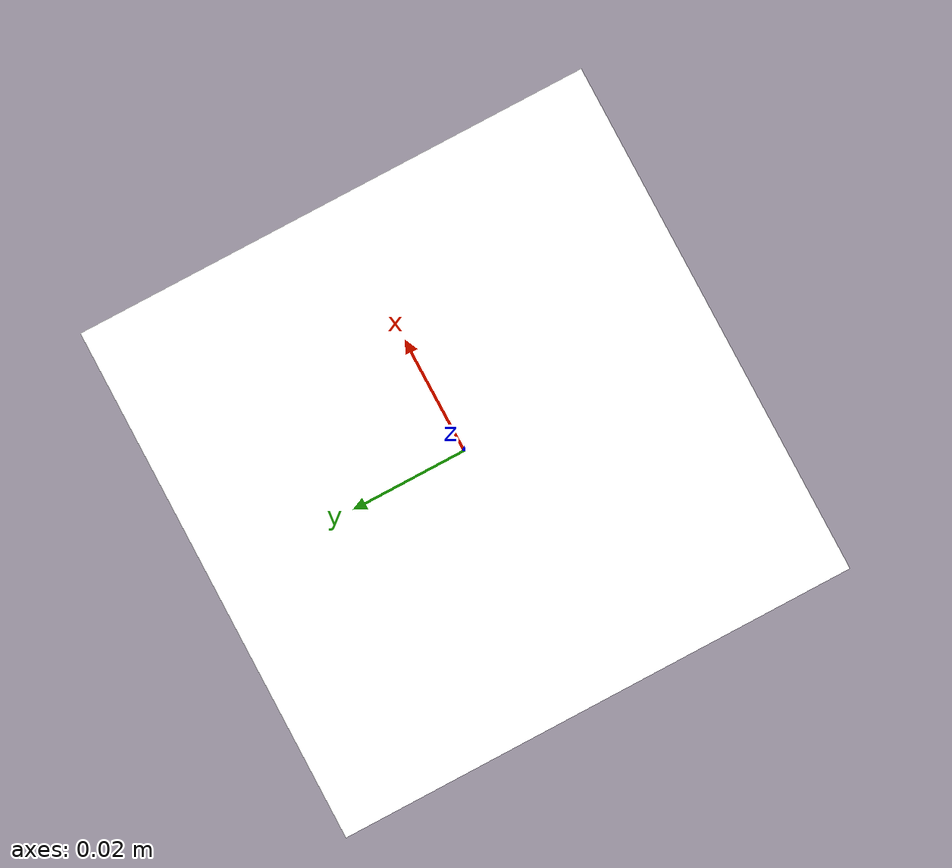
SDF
<?xml version="1.0" ?>
<!-- zone_a: flat 9x9 cm white pad on the table (visual only, no collision). -->
<sdf version="1.6">
  <model name="zone_a">
    <static>true</static>
    <link name="link">
      <visual name="visual">
        <geometry><box><size>0.09 0.09 0.002</size></box></geometry>
        <material><ambient>0.95 0.95 0.95 1</ambient><diffuse>0.95 0.95 0.95 1</diffuse></material>
      </visual>
    </link>
  </model>
</sdf>
